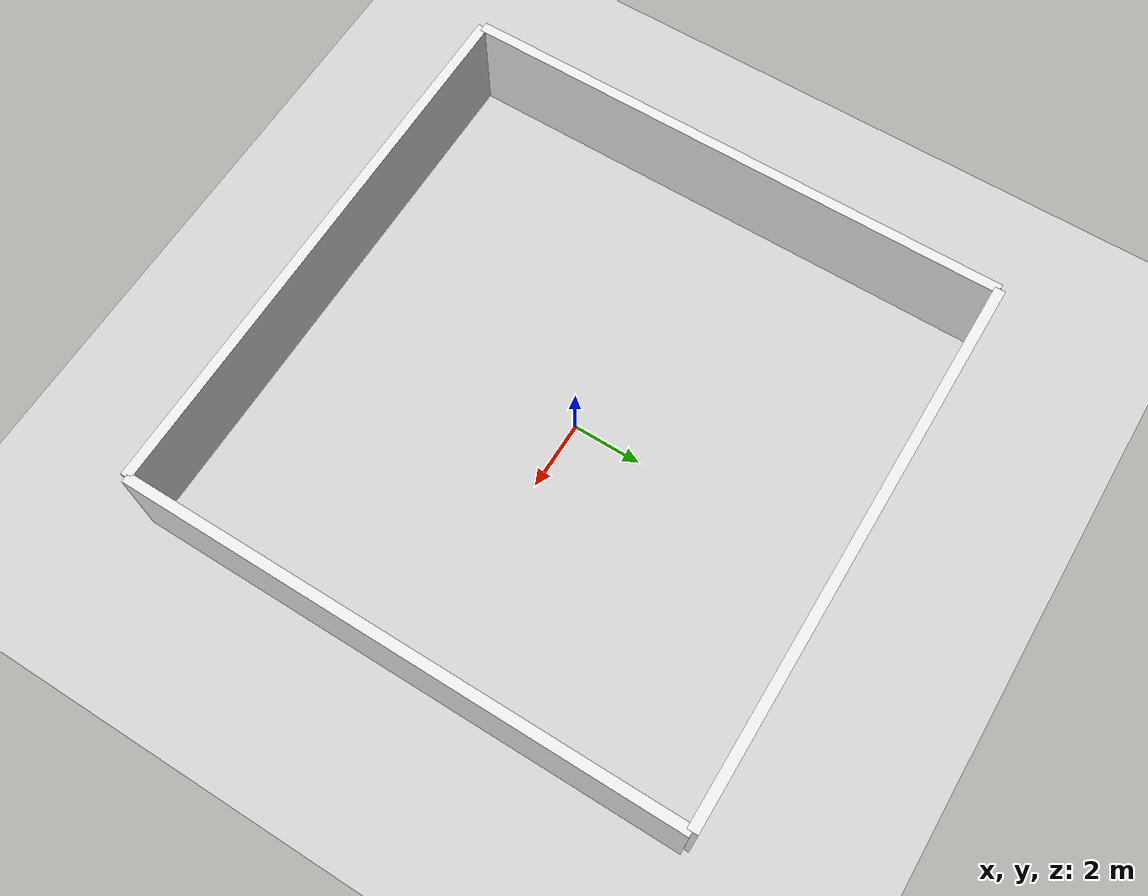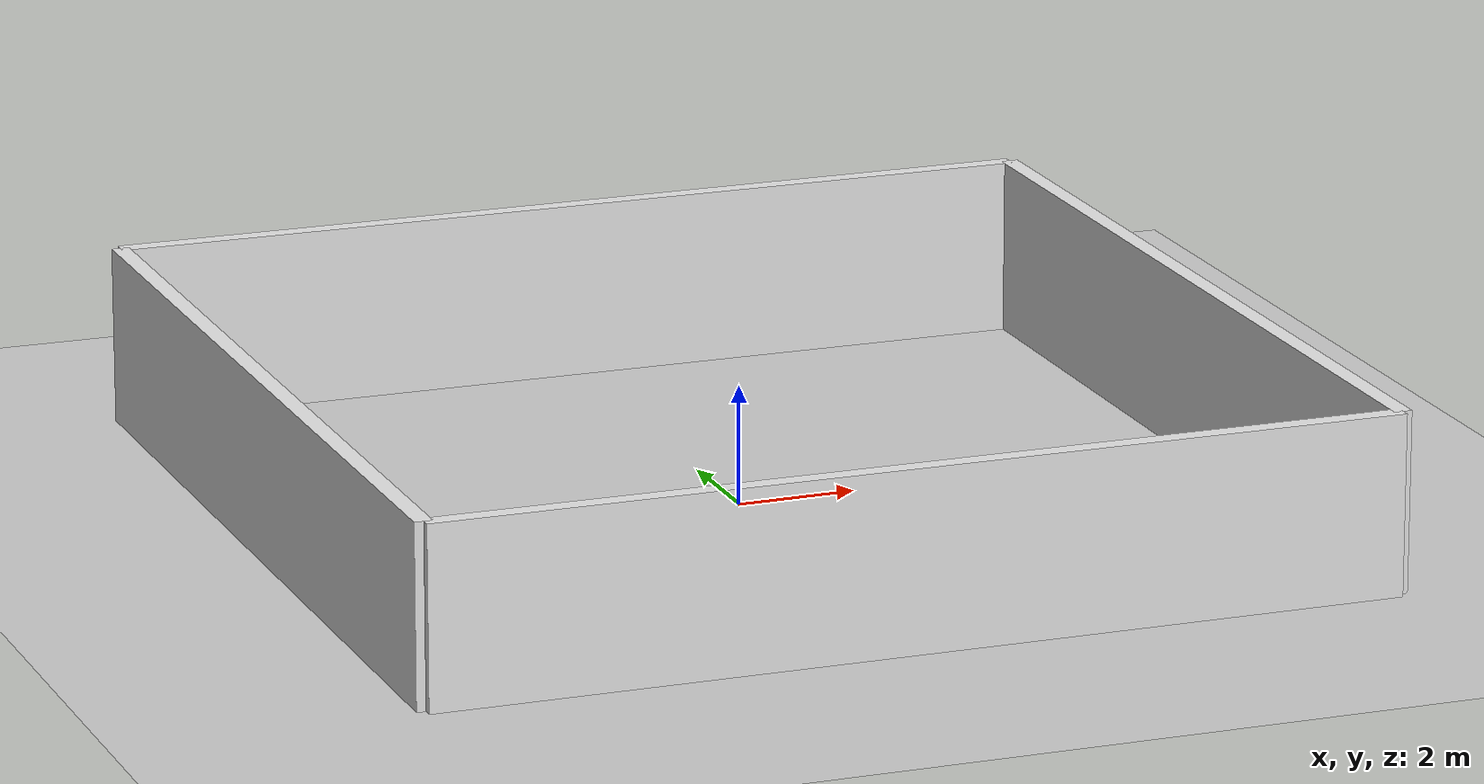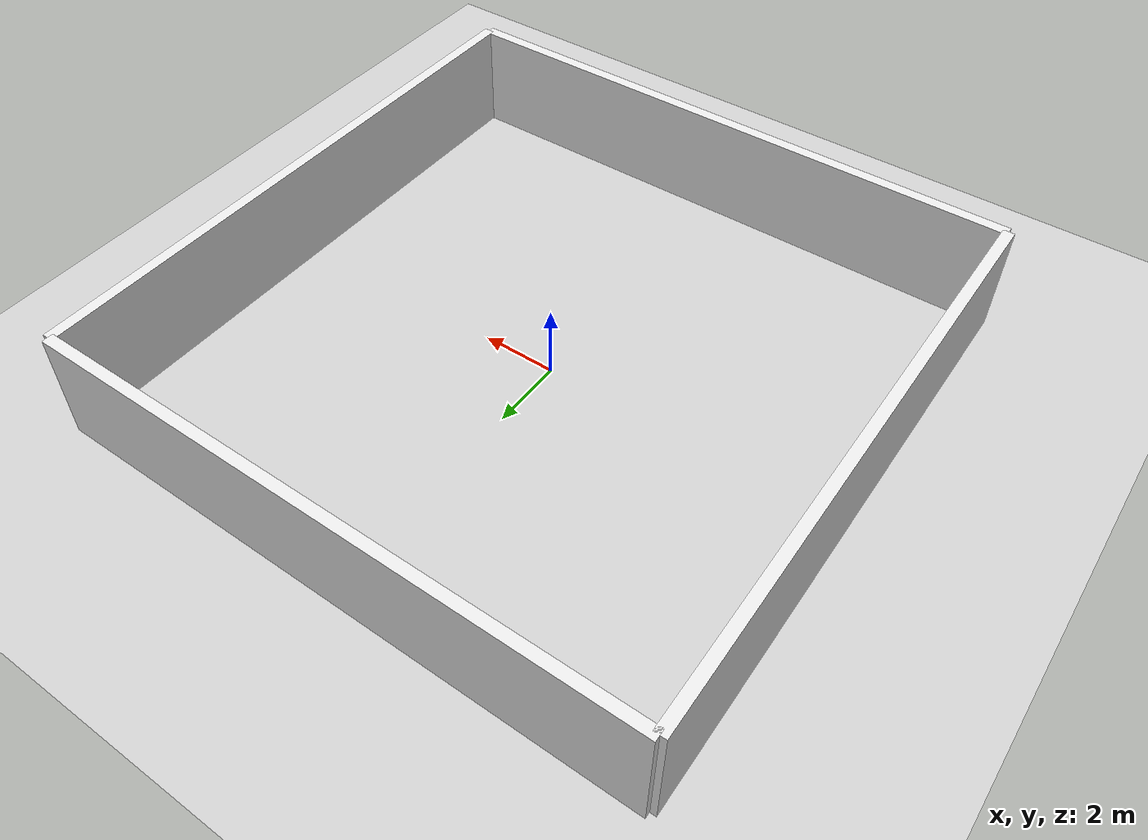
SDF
<?xml version="1.0"?>
<sdf version='1.6'>
  <world name='walled_square_arena'>
    <include>
      <uri>model://sun</uri>
    </include>
    <include>
      <uri>model://ground_plane</uri>
    </include>

    <physics type="ode">
      <real_time_update_rate>1000.0</real_time_update_rate>
      <max_step_size>0.001</max_step_size>
      <real_time_factor>1</real_time_factor>
      <ode>
        <solver>
          <type>quick</type>
          <iters>150</iters>
          <precon_iters>0</precon_iters>
          <sor>1.4</sor>
          <use_dynamic_moi_rescaling>1</use_dynamic_moi_rescaling>
        </solver>
      </ode>
    </physics>

    <gui fullscreen='0'>
      <camera name='user_camera'>
        <pose frame=''>0 -25 8 0 0.35 0</pose>
        <view_controller>orbit</view_controller>
        <projection_type>perspective</projection_type>
      </camera>
    </gui>

    <model name='iscas_museum_outer_perimeter'>
      <static>true</static>
      <pose>0 0 0 0 0 0</pose>
      <!-- Dimensions derived from the original ISCAS museum mesh bounding box -->
      <link name='north_wall'>
        <pose>0 8.0395 1.5 0 0 0</pose>
        <collision name='north_wall_collision'>
          <geometry>
            <box>
              <size>16.079 0.3 3.0</size>
            </box>
          </geometry>
        </collision>
        <visual name='north_wall_visual'>
          <geometry>
            <box>
              <size>16.079 0.3 3.0</size>
            </box>
          </geometry>
          <material>
            <ambient>0.8 0.8 0.8 1</ambient>
            <diffuse>0.9 0.9 0.9 1</diffuse>
          </material>
        </visual>
      </link>

      <link name='south_wall'>
        <pose>0 -8.0395 1.5 0 0 0</pose>
        <collision name='south_wall_collision'>
          <geometry>
            <box>
              <size>16.079 0.3 3.0</size>
            </box>
          </geometry>
        </collision>
        <visual name='south_wall_visual'>
          <geometry>
            <box>
              <size>16.079 0.3 3.0</size>
            </box>
          </geometry>
          <material>
            <ambient>0.8 0.8 0.8 1</ambient>
            <diffuse>0.9 0.9 0.9 1</diffuse>
          </material>
        </visual>
      </link>

      <link name='east_wall'>
        <pose>8.0395 0 1.5 0 0 0</pose>
        <collision name='east_wall_collision'>
          <geometry>
            <box>
              <size>0.3 16.079 3.0</size>
            </box>
          </geometry>
        </collision>
        <visual name='east_wall_visual'>
          <geometry>
            <box>
              <size>0.3 16.079 3.0</size>
            </box>
          </geometry>
          <material>
            <ambient>0.8 0.8 0.8 1</ambient>
            <diffuse>0.9 0.9 0.9 1</diffuse>
          </material>
        </visual>
      </link>

      <link name='west_wall'>
        <pose>-8.0395 0 1.5 0 0 0</pose>
        <collision name='west_wall_collision'>
          <geometry>
            <box>
              <size>0.3 16.079 3.0</size>
            </box>
          </geometry>
        </collision>
        <visual name='west_wall_visual'>
          <geometry>
            <box>
              <size>0.3 16.079 3.0</size>
            </box>
          </geometry>
          <material>
            <ambient>0.8 0.8 0.8 1</ambient>
            <diffuse>0.9 0.9 0.9 1</diffuse>
          </material>
        </visual>
      </link>
    </model>
  </world>
</sdf>
